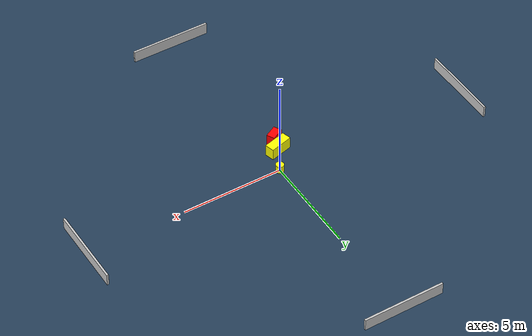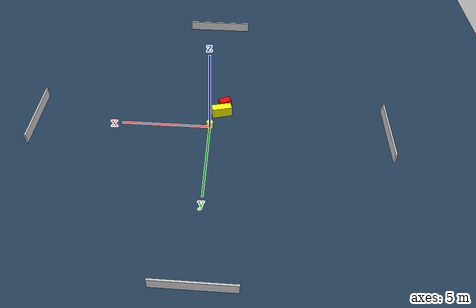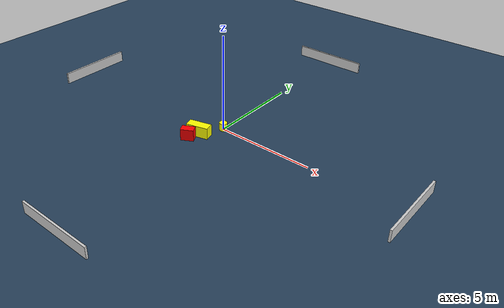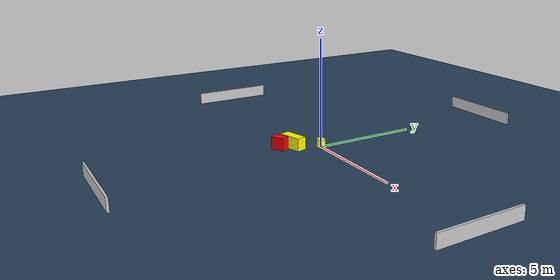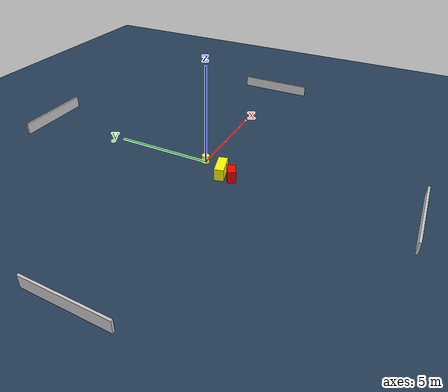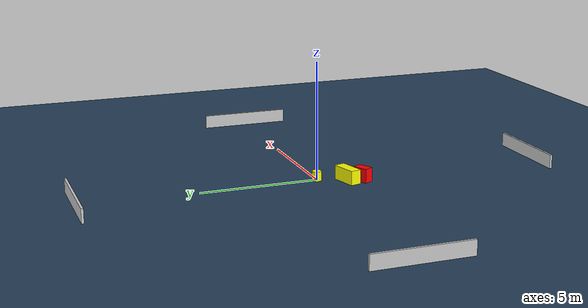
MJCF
<?xml version="1.0" ?>
<mujoco model="generated_environment">
  <option timestep="0.01" integrator="RK4" cone="elliptic"/>
  <default>
    <geom density="1"/>
  </default>
  <asset>
    <texture builtin="gradient" height="3072" name="skybox" rgb1="0.3 0.5 0.7" rgb2="0 0 0" type="skybox" width="512"/>
    <texture builtin="checker" height="300" name="groundplane" rgb1="0.2 0.3 0.4" rgb2="0.1 0.2 0.3" type="2d" width="300"/>
    <material name="groundplane" reflectance="0.2" texrepeat="5 5" texture="groundplane"/>
  </asset>
  <worldbody>
    <light dir="0 0 -1" directional="true" pos="0 0 1.5"/>
    <geom condim="3" friction="0.5 0.005 0.001" material="groundplane" name="floor" pos="0 0 0" size="0 0 0.05" type="plane"/>
    <body name="walls">
      <geom name="wall_1" condim="4" pos="-10.0 0.0 0.3" rgba="0.800000011920929 0.800000011920929 0.800000011920929 1.0" size="0.05 2.0 0.3" type="box"/>
      <geom name="wall_2" condim="4" pos="10.0 0.0 0.3" rgba="0.800000011920929 0.800000011920929 0.800000011920929 1.0" size="0.05 2.0 0.3" type="box"/>
      <geom name="wall_3" condim="4" pos="0.0 -10.0 0.3" rgba="0.800000011920929 0.800000011920929 0.800000011920929 1.0" size="2.0 0.05 0.3" type="box"/>
      <geom name="wall_4" condim="4" pos="0.0 10.0 0.3" rgba="0.800000011920929 0.800000011920929 0.800000011920929 1.0" size="2.0 0.05 0.3" type="box"/>
    </body>
    <body name="robot">
      <joint name="joint_x" type="slide" pos="0 0 0" axis="1 0 0"/>
      <joint name="joint_y" type="slide" pos="0 0 0" axis="0 1 0"/>
      <geom name="robot" type="cylinder" pos="0.0 0.0 0.2" size="0.2 0.2 0.0" mass="5.0" friction="1.0 0.005 0.0001" condim="4" rgba="1.0 1.0 0.0 1.0"/>
    </body>
    <body name="obstacle_1_movable">
      <geom name="obstacle_1_movable" condim="4" pos="-0.6021597825239998 -1.1347066717133552 0.3" euler="0 0 104.6968025572235" friction="0.0 0.005 0.001" rgba="1.0 1.0 0.0 1.0" size="0.2332004349218585 0.5727596792465813 0.3" type="box" mass="0.1"/>
      <joint type="free"/>
    </body>
    <body name="obstacle_2_static">
      <geom name="obstacle_2_static" condim="4" pos="-0.767460093359046 -1.7416605577698214 0.3" euler="0 0 118.23208087469476" friction="0.0 0.005 0.001" rgba="1.0 0.0 0.0 1.0" size="0.20268066247207625 0.3284368723598683 0.3" type="box"/>
    </body>
  </worldbody>
  <actuator>
    <motor name="actuator_x" joint="joint_x" gear="1" ctrlrange="-1 1"/>
    <motor name="actuator_y" joint="joint_y" gear="1" ctrlrange="-1 1"/>
  </actuator>
</mujoco>
